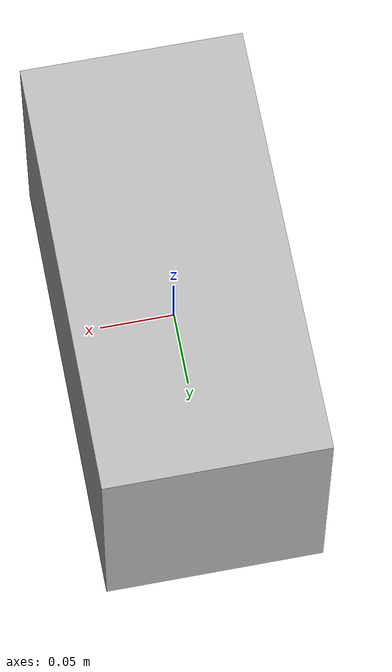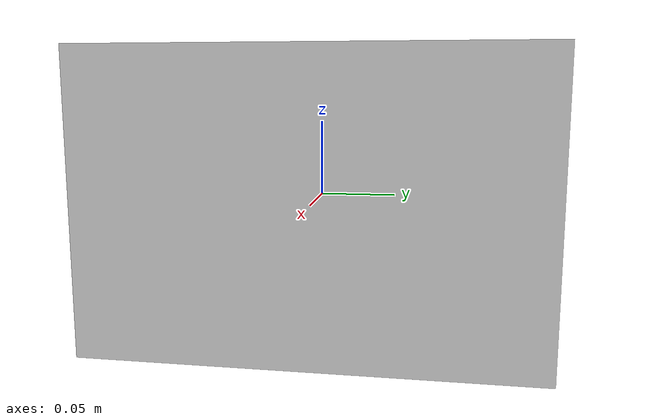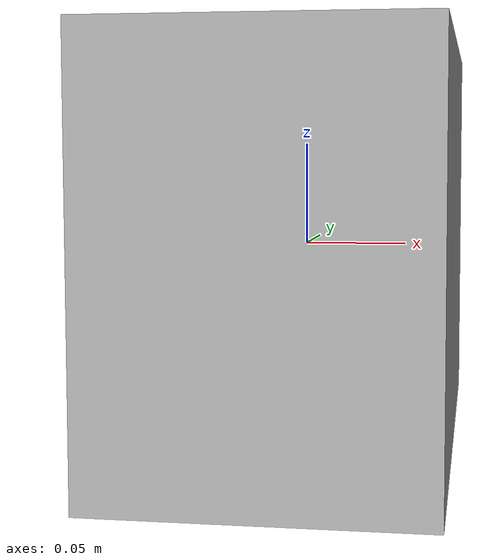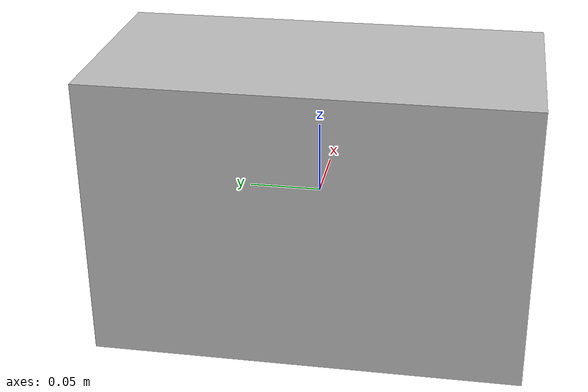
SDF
<?xml version='1.0'?>
<sdf version='1.6'>
  <model name="box_l150_w300_h200">
      <static>true</static>
      <link name='link'>
        <collision name='collision'>
          <geometry>
         <box>
            <size>0.15 0.3 0.2</size>
          </box>
          </geometry>
          <surface>
            <friction>
              <ode>
                <mu>100</mu>
                <mu2>50</mu2>
              </ode>
            </friction>
          </surface>
        </collision>
        <visual name='visual'>
          <cast_shadows>0</cast_shadows>
          <geometry>
         <box>
            <size>0.15 0.3 0.2</size>
          </box>
          </geometry>
          <material>
            <script>
              <uri>model://box_l150_w300_h200/materials/scripts</uri>
              <uri>model://box_l150_w300_h200/materials/textures/</uri>
              <name>box_l150_w300_h200/Image</name>
            </script>
          </material>
        </visual>
      </link>
  </model>
</sdf>
